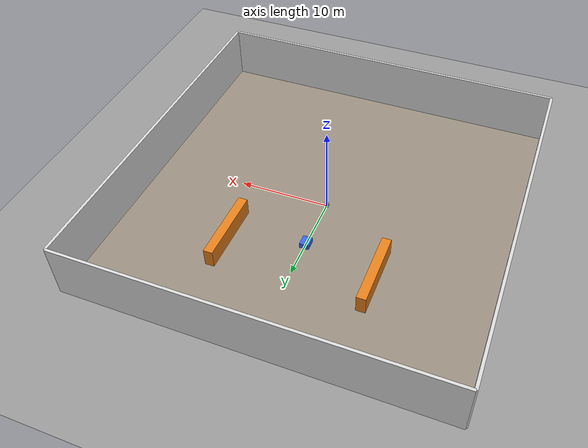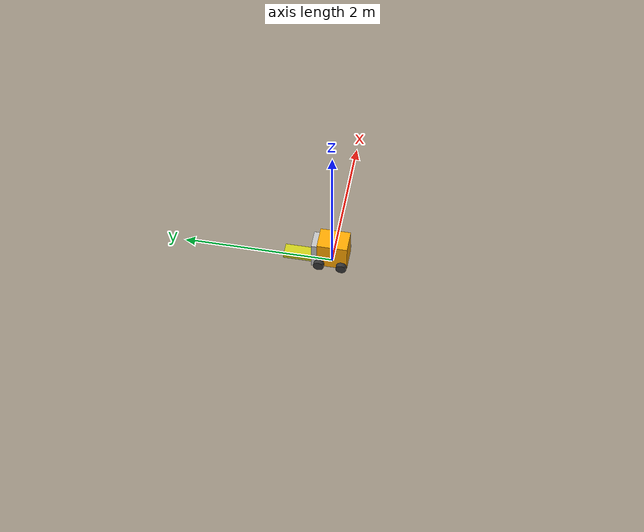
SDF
<?xml version='1.0' encoding='ASCII'?>
<sdf version='1.7'>
  <world name='forklift_warehouse'>
    <gravity>0 0 -9.8</gravity>
    <physics type='ode'>
      <max_step_size>0.01</max_step_size>
      <real_time_factor>1</real_time_factor>
      <max_contacts>10</max_contacts>
    </physics>

    <!-- Required system plugins -->
    <plugin name='gz::sim::systems::Physics'   filename='gz-sim-physics-system'/>
    <plugin name='gz::sim::systems::UserCommands' filename='gz-sim-user-commands-system'/>
    <plugin name='gz::sim::systems::SceneBroadcaster' filename='gz-sim-scene-broadcaster-system'/>

    <!-- GUI layout -->
    <gui fullscreen="0">
      <plugin filename="GzScene3D" name="3D View">
        <ignition-gui>
          <title>3D View</title>
          <property type="bool" key="showTitleBar">false</property>
          <property type="string" key="state">docked</property>
        </ignition-gui>
        <engine>ogre2</engine>
        <scene>scene</scene>
        <ambient_light>0.6 0.6 0.6</ambient_light>
        <background_color>0.5 0.7 0.9</background_color>
        <!-- Camera looking at the forklift which is at x=0 y=0 z=0.25 -->
        <camera_pose>3 -5 2 0 0.3 2.2</camera_pose>
      </plugin>
      <plugin filename="WorldControl" name="World control">
        <ignition-gui>
          <property type="bool" key="showTitleBar">false</property>
          <property type="bool" key="resizable">false</property>
          <property type="double" key="height">72</property>
          <property type="double" key="width">121</property>
          <property type="double" key="z">1</property>
          <property type="string" key="state">floating</property>
          <anchors target="3D View">
            <line own="left"   target="left"/>
            <line own="bottom" target="bottom"/>
          </anchors>
        </ignition-gui>
        <play_pause>true</play_pause>
        <step>true</step>
        <start_paused>false</start_paused>
      </plugin>
      <plugin filename="WorldStats" name="World stats">
        <ignition-gui>
          <property type="bool" key="showTitleBar">false</property>
          <property type="bool" key="resizable">false</property>
          <property type="double" key="height">110</property>
          <property type="double" key="width">290</property>
          <property type="double" key="z">1</property>
          <property type="string" key="state">floating</property>
          <anchors target="3D View">
            <line own="right"  target="right"/>
            <line own="bottom" target="bottom"/>
          </anchors>
        </ignition-gui>
        <sim_time>true</sim_time>
        <real_time>true</real_time>
        <real_time_factor>true</real_time_factor>
        <iterations>true</iterations>
      </plugin>
      <plugin filename="EntityTree" name="Entity tree">
        <ignition-gui>
          <property key="state" type="string">docked_collapsed</property>
        </ignition-gui>
      </plugin>
    </gui>

    <!-- Scene lighting -->
    <scene>
      <ambient>0.8 0.8 0.8 1</ambient>
      <background>0.3 0.5 0.8 1</background>
      <shadows>0</shadows>
    </scene>
    <light type="directional" name="sun">
      <cast_shadows>0</cast_shadows>
      <pose>0 0 20 0 0 0</pose>
      <diffuse>1 1 1 1</diffuse>
      <specular>0.5 0.5 0.5 1</specular>
      <direction>0.1 0.1 -1</direction>
    </light>

    <!-- =================== GROUND PLANE =================== -->
    <model name='ground_plane'>
      <static>true</static>
      <link name='link'>
        <collision name='collision'>
          <geometry><plane><normal>0 0 1</normal><size>100 100</size></plane></geometry>
          <surface><friction><ode><mu>1</mu><mu2>1</mu2></ode></friction></surface>
        </collision>
        <visual name='visual'>
          <geometry><plane><normal>0 0 1</normal><size>100 100</size></plane></geometry>
          <material>
            <ambient>0.4 0.4 0.4 1</ambient>
            <diffuse>0.6 0.6 0.6 1</diffuse>
          </material>
        </visual>
      </link>
    </model>

    <!-- =================== WAREHOUSE WALLS (local boxes – no internet) =================== -->
    <!-- Floor slab (slightly above ground so forklift doesn't clip) -->
    <model name='warehouse_floor'>
      <static>true</static>
      <pose>0 0 -0.05 0 0 0</pose>
      <link name='link'>
        <collision name='c'><geometry><box><size>40 40 0.1</size></box></geometry></collision>
        <visual name='v'>
          <geometry><box><size>40 40 0.1</size></box></geometry>
          <material><ambient>0.45 0.42 0.38 1</ambient><diffuse>0.6 0.56 0.5 1</diffuse></material>
        </visual>
      </link>
    </model>

    <!-- North wall -->
    <model name='wall_north'>
      <static>true</static>
      <pose>0 20 3 0 0 0</pose>
      <link name='link'>
        <collision name='c'><geometry><box><size>40 0.3 6</size></box></geometry></collision>
        <visual name='v'>
          <geometry><box><size>40 0.3 6</size></box></geometry>
          <material><ambient>0.7 0.7 0.7 1</ambient><diffuse>0.85 0.85 0.85 1</diffuse></material>
        </visual>
      </link>
    </model>
    <!-- South wall -->
    <model name='wall_south'>
      <static>true</static>
      <pose>0 -20 3 0 0 0</pose>
      <link name='link'>
        <collision name='c'><geometry><box><size>40 0.3 6</size></box></geometry></collision>
        <visual name='v'>
          <geometry><box><size>40 0.3 6</size></box></geometry>
          <material><ambient>0.7 0.7 0.7 1</ambient><diffuse>0.85 0.85 0.85 1</diffuse></material>
        </visual>
      </link>
    </model>
    <!-- East wall -->
    <model name='wall_east'>
      <static>true</static>
      <pose>20 0 3 0 0 0</pose>
      <link name='link'>
        <collision name='c'><geometry><box><size>0.3 40 6</size></box></geometry></collision>
        <visual name='v'>
          <geometry><box><size>0.3 40 6</size></box></geometry>
          <material><ambient>0.7 0.7 0.7 1</ambient><diffuse>0.85 0.85 0.85 1</diffuse></material>
        </visual>
      </link>
    </model>
    <!-- West wall -->
    <model name='wall_west'>
      <static>true</static>
      <pose>-20 0 3 0 0 0</pose>
      <link name='link'>
        <collision name='c'><geometry><box><size>0.3 40 6</size></box></geometry></collision>
        <visual name='v'>
          <geometry><box><size>0.3 40 6</size></box></geometry>
          <material><ambient>0.7 0.7 0.7 1</ambient><diffuse>0.85 0.85 0.85 1</diffuse></material>
        </visual>
      </link>
    </model>

    <!-- Simple shelf rows using orange boxes -->
    <model name='shelf_row_1'>
      <static>true</static>
      <pose>-8 8 1.0 0 0 0</pose>
      <link name='link'>
        <collision name='c'><geometry><box><size>1.0 8.0 2.0</size></box></geometry></collision>
        <visual name='v'>
          <geometry><box><size>1.0 8.0 2.0</size></box></geometry>
          <material><ambient>0.7 0.4 0.1 1</ambient><diffuse>0.9 0.5 0.1 1</diffuse></material>
        </visual>
      </link>
    </model>
    <model name='shelf_row_2'>
      <static>true</static>
      <pose>8 8 1.0 0 0 0</pose>
      <link name='link'>
        <collision name='c'><geometry><box><size>1.0 8.0 2.0</size></box></geometry></collision>
        <visual name='v'>
          <geometry><box><size>1.0 8.0 2.0</size></box></geometry>
          <material><ambient>0.7 0.4 0.1 1</ambient><diffuse>0.9 0.5 0.1 1</diffuse></material>
        </visual>
      </link>
    </model>

    <!-- Target pallet box (blue) – forklift will pick this up -->
    <model name='target_pallet'>
      <static>false</static>
      <pose>0 6 0.3 0 0 0</pose>
      <link name='link'>
        <inertial><mass>50</mass>
          <inertia><ixx>1</ixx><ixy>0</ixy><ixz>0</ixz><iyy>1</iyy><iyz>0</iyz><izz>1</izz></inertia>
        </inertial>
        <collision name='c'><geometry><box><size>1.0 1.2 0.6</size></box></geometry>
          <surface><friction><ode><mu>0.8</mu><mu2>0.8</mu2></ode></friction></surface>
        </collision>
        <visual name='v'>
          <geometry><box><size>1.0 1.2 0.6</size></box></geometry>
          <material><ambient>0.1 0.3 0.8 1</ambient><diffuse>0.2 0.4 1.0 1</diffuse></material>
        </visual>
      </link>
    </model>

    <!-- =================== FORKLIFT (inlined, no model:// URI) =================== -->
    <!--
      Spawned at origin facing +Y (into the warehouse).
      Camera is positioned to the front-right so the forklift is immediately visible.
    -->
    <model name='forklift'>
      <pose>0 0 0.25 0 0 1.5708</pose>
      <static>0</static>

      <!-- ForkLiftPlugin: lift/shift/drive/odom via ROS 2 topics -->
      <plugin name="forklift_gazebo::ForkLiftPlugin" filename="libForkLiftPlugin.so"/>

      <!-- ── Main chassis ── -->
      <link name='fixed_box'>
        <pose>-0.02 0.0 0.0 0 0 0</pose>
        <inertial>
          <mass>50</mass>
          <inertia>
            <ixx>0.5417</ixx><ixy>0</ixy><ixz>0</ixz>
            <iyy>0.5417</iyy><iyz>0</iyz><izz>0.3333</izz>
          </inertia>
        </inertial>
        <visual name='visual'>
          <geometry><box><size>0.4 0.3 0.4</size></box></geometry>
          <material>
            <ambient>0.8 0.5 0.0 1</ambient>
            <diffuse>1.0 0.65 0.0 1</diffuse>
          </material>
        </visual>
        <collision name='collision'>
          <geometry><box><size>0.4 0.3 0.4</size></box></geometry>
        </collision>
      </link>

      <!-- ── Wheels ── -->
      <link name="wheel_front_left">
        <pose>0.15 0.18 -0.15 -1.5707963 0 0</pose>
        <inertial><mass>2</mass>
          <inertia><ixx>0.000354</ixx><ixy>0</ixy><ixz>0</ixz>
            <iyy>0.000354</iyy><iyz>0</iyz><izz>0.00025</izz></inertia>
        </inertial>
        <collision name="c">
          <geometry><cylinder><radius>0.07</radius><length>0.06</length></cylinder></geometry>
          <surface><friction><ode><mu>1.0</mu><mu2>1.0</mu2></ode></friction></surface>
        </collision>
        <visual name="v">
          <geometry><cylinder><radius>0.07</radius><length>0.06</length></cylinder></geometry>
          <material><ambient>0.1 0.1 0.1 1</ambient><diffuse>0.2 0.2 0.2 1</diffuse></material>
        </visual>
      </link>
      <joint name="wheel_front_left_joint" type="revolute">
        <parent>fixed_box</parent><child>wheel_front_left</child>
        <axis><xyz>0 0 1</xyz><limit><lower>-1e308</lower><upper>1e308</upper></limit></axis>
      </joint>

      <link name="wheel_front_right">
        <pose>0.15 -0.18 -0.15 -1.5707963 0 0</pose>
        <inertial><mass>2</mass>
          <inertia><ixx>0.000354</ixx><ixy>0</ixy><ixz>0</ixz>
            <iyy>0.000354</iyy><iyz>0</iyz><izz>0.00025</izz></inertia>
        </inertial>
        <collision name="c">
          <geometry><cylinder><radius>0.07</radius><length>0.06</length></cylinder></geometry>
          <surface><friction><ode><mu>1.0</mu><mu2>1.0</mu2></ode></friction></surface>
        </collision>
        <visual name="v">
          <geometry><cylinder><radius>0.07</radius><length>0.06</length></cylinder></geometry>
          <material><ambient>0.1 0.1 0.1 1</ambient><diffuse>0.2 0.2 0.2 1</diffuse></material>
        </visual>
      </link>
      <joint name="wheel_front_right_joint" type="revolute">
        <parent>fixed_box</parent><child>wheel_front_right</child>
        <axis><xyz>0 0 1</xyz><limit><lower>-1e308</lower><upper>1e308</upper></limit></axis>
      </joint>

      <link name="wheel_rear_left">
        <pose>-0.15 0.18 -0.15 -1.5707963 0 0</pose>
        <inertial><mass>2</mass>
          <inertia><ixx>0.000354</ixx><ixy>0</ixy><ixz>0</ixz>
            <iyy>0.000354</iyy><iyz>0</iyz><izz>0.00025</izz></inertia>
        </inertial>
        <collision name="c">
          <geometry><cylinder><radius>0.07</radius><length>0.06</length></cylinder></geometry>
          <surface><friction><ode><mu>0.5</mu><mu2>0.5</mu2></ode></friction></surface>
        </collision>
        <visual name="v">
          <geometry><cylinder><radius>0.07</radius><length>0.06</length></cylinder></geometry>
          <material><ambient>0.1 0.1 0.1 1</ambient><diffuse>0.2 0.2 0.2 1</diffuse></material>
        </visual>
      </link>
      <joint name="wheel_rear_left_joint" type="revolute">
        <parent>fixed_box</parent><child>wheel_rear_left</child>
        <axis><xyz>0 0 1</xyz><limit><lower>-1e308</lower><upper>1e308</upper></limit></axis>
      </joint>

      <link name="wheel_rear_right">
        <pose>-0.15 -0.18 -0.15 -1.5707963 0 0</pose>
        <inertial><mass>2</mass>
          <inertia><ixx>0.000354</ixx><ixy>0</ixy><ixz>0</ixz>
            <iyy>0.000354</iyy><iyz>0</iyz><izz>0.00025</izz></inertia>
        </inertial>
        <collision name="c">
          <geometry><cylinder><radius>0.07</radius><length>0.06</length></cylinder></geometry>
          <surface><friction><ode><mu>0.5</mu><mu2>0.5</mu2></ode></friction></surface>
        </collision>
        <visual name="v">
          <geometry><cylinder><radius>0.07</radius><length>0.06</length></cylinder></geometry>
          <material><ambient>0.1 0.1 0.1 1</ambient><diffuse>0.2 0.2 0.2 1</diffuse></material>
        </visual>
      </link>
      <joint name="wheel_rear_right_joint" type="revolute">
        <parent>fixed_box</parent><child>wheel_rear_right</child>
        <axis><xyz>0 0 1</xyz><limit><lower>-1e308</lower><upper>1e308</upper></limit></axis>
      </joint>

      <!-- ── Mast / fork carriage (base_fork) ── -->
      <model name='base_fork'>
        <link name='base_fork_link'>
          <pose>0.22 0 -0.05 0 0 0</pose>
          <inertial><mass>15</mass>
            <inertia><ixx>0.166667</ixx><ixy>0</ixy><ixz>0</ixz>
              <iyy>0.166667</iyy><iyz>0</iyz><izz>0.166667</izz></inertia>
          </inertial>
          <visual name='visual'>
            <geometry><box><size>0.08 0.25 0.4</size></box></geometry>
            <material><ambient>0.6 0.6 0.6 1</ambient><diffuse>0.75 0.75 0.75 1</diffuse></material>
          </visual>
          <collision name='collision'>
            <geometry><box><size>0.08 0.25 0.4</size></box></geometry>
            <surface>
              <contact><ode><max_vel>0.01</max_vel><min_depth>0.002</min_depth></ode></contact>
              <friction><ode><mu>0.8</mu><mu2>0.8</mu2></ode></friction>
            </surface>
          </collision>
        </link>
      </model>

      <!-- ── Fork tines ── -->
      <model name='fork'>
        <link name='fork_link'>
          <pose>0.42 0 -0.18 0 0 0</pose>
          <inertial><mass>8</mass>
            <inertia><ixx>0.166667</ixx><ixy>0</ixy><ixz>0</ixz>
              <iyy>0.166667</iyy><iyz>0</iyz><izz>0.166667</izz></inertia>
          </inertial>
          <visual name='visual'>
            <geometry><box><size>0.45 0.2 0.04</size></box></geometry>
            <material><ambient>0.5 0.5 0.1 1</ambient><diffuse>0.8 0.8 0.1 1</diffuse></material>
          </visual>
          <collision name='collision'>
            <geometry><box><size>0.45 0.2 0.04</size></box></geometry>
            <surface>
              <contact><ode><max_vel>0.01</max_vel><min_depth>0.003</min_depth></ode></contact>
              <friction><ode><mu>0.6</mu><mu2>0.6</mu2></ode></friction>
            </surface>
          </collision>
        </link>
      </model>

      <!-- lift: moves fork up/down -->
      <joint name='lift' type='prismatic'>
        <parent>base_fork::base_fork_link</parent>
        <child>fork::fork_link</child>
        <axis>
          <xyz>0 0 1</xyz>
          <limit><lower>0</lower><upper>0.35</upper><effort>500</effort><velocity>0.1</velocity></limit>
          <dynamics><damping>5.0</damping><friction>2.0</friction></dynamics>
        </axis>
      </joint>

      <!-- shift: moves fork carriage left/right -->
      <joint name='shift' type='prismatic'>
        <parent>fixed_box</parent>
        <child>base_fork::base_fork_link</child>
        <axis>
          <xyz>0 1 0</xyz>
          <limit><lower>-0.12</lower><upper>0.12</upper>
                 <effort>1000000</effort><velocity>1000000</velocity></limit>
        </axis>
      </joint>

      <allow_auto_disable>1</allow_auto_disable>
    </model>

  </world>
</sdf>
